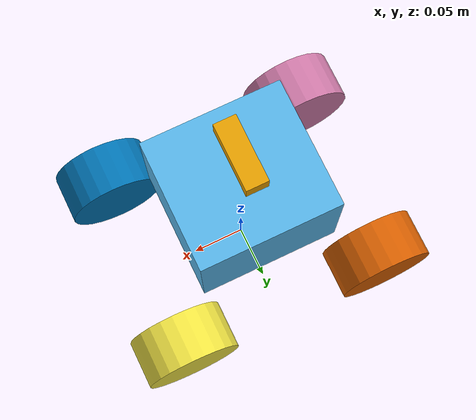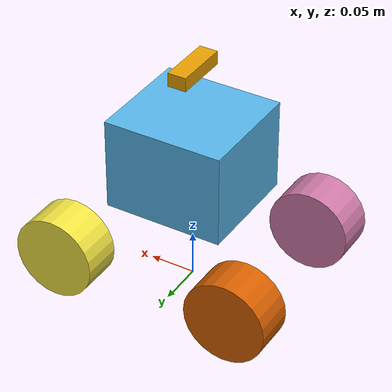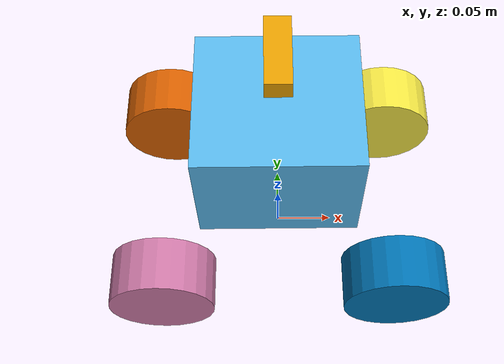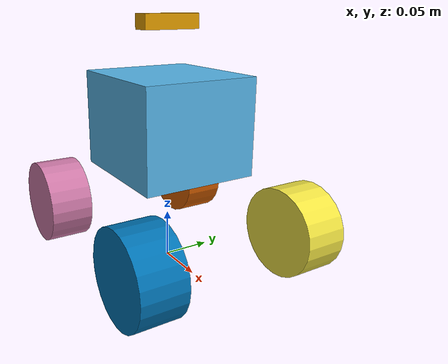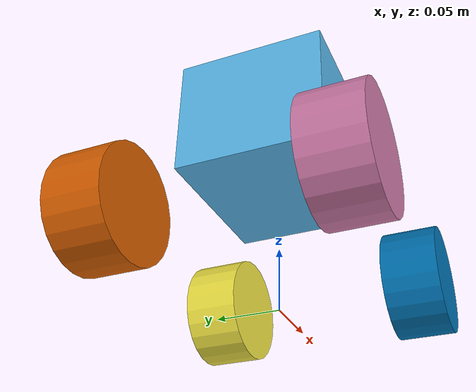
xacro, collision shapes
<?xml version="1.0"?>

<robot name="limo_four_diff" xmlns:xacro="http://ros.org/wiki/xacro">

    <xacro:include filename="$(find limo_description)/urdf/limo_xacro.xacro" />

    <!-- Variables -->
    <xacro:property name="M_PI" value="3.14159"/>

    <!-- Vehicle Geometries -->
    <xacro:property name="base_x_size" value="0.13" />
    <xacro:property name="base_y_size" value="0.12" />
    <xacro:property name="base_z_size" value="0.1" />

    <xacro:property name="wheelbase" value="0.2"/>
    <xacro:property name="track" value="0.13"/>
    <xacro:property name="wheel_vertical_offset" value="-0.10" />
    <xacro:property name="base_mass" value="2.1557"/>

    <xacro:property name="wheel_length" value="0.045" />
    <xacro:property name="wheel_radius" value="0.045" />
  <link name="base_footprint"/>

  <joint name="base_joint" type="fixed">
    <parent link="base_footprint"/>
    <child link="base_link"/>
    <origin xyz="0.0 0.0 0.15" rpy="0 0 0"/>
  </joint>
    <!-- Base link -->
    <link name="base_link">
        <visual>
            <origin xyz="0 0 -0.15" rpy="0 0 1.57" />
            <geometry>
                <mesh filename="file://$(find limo_description)/meshes/limo_base.dae" scale="1 1 1"/>
            </geometry>
        </visual>
        <collision>
            <!--origin xyz="0 0 -0.15" rpy="0 0 1.57" /-->
            <origin xyz="0 0 0" rpy="0 0 0" />
          <geometry>
              <box size="${base_x_size} ${base_y_size} ${base_z_size}"/>
          </geometry>
        </collision>
    </link>

    <link name="inertial_link">
        <inertial>
            <origin xyz="0.0 0.0 0.0" />
            <mass value="${base_mass}" />
            <inertia ixx="0.24" ixy="0" ixz="0"
                     iyy="0.96" iyz="0"
                     izz="0.96" />
        </inertial>
    </link>

    <joint name="inertial_joint" type="fixed">
        <origin xyz="0 0 0" rpy="0 0 0" />
        <parent link="base_link" />
        <child link="inertial_link" />
    </joint>

    <xacro:limo_wheel parent_prefix="base_link" wheel_prefix="front_left" reflect="1">
        <origin xyz="${wheelbase/2} ${track/2} ${wheel_vertical_offset}" rpy="0 0  0" />
    </xacro:limo_wheel>

    <xacro:limo_wheel parent_prefix="base_link" wheel_prefix="front_right" reflect="-1">
        <origin xyz="${wheelbase/2} ${-track/2} ${wheel_vertical_offset}" rpy="${M_PI} 0 0" />
    </xacro:limo_wheel>

    <xacro:limo_wheel parent_prefix="base_link" wheel_prefix="rear_left" reflect="1">
        <origin xyz="${-wheelbase/2} ${track/2} ${wheel_vertical_offset}" rpy="0 0 0" />
    </xacro:limo_wheel>

    <xacro:limo_wheel parent_prefix="base_link" wheel_prefix="rear_right" reflect="-1">
        <origin xyz="${-wheelbase/2} ${-track/2} ${wheel_vertical_offset}" rpy="${M_PI} 0 0" />
    </xacro:limo_wheel>

    <link name='laser_link'>
        <pose>0 0 0 0 0 0</pose>
        <inertial>
            <mass value="0.1"/>
            <origin xyz="0.0 0 0" rpy="0 0 0"/>
            <inertia
                ixx="1e-6" ixy="0" ixz="0"
                iyy="1e-6" iyz="0"
                izz="1e-6"
            />
        </inertial>
        <visual name='laser_visual'>
            <origin xyz="0 0 0" rpy="0 0 0"/>
            <geometry>
                <cylinder radius="0.02" length="0.01"/>
            </geometry>
            <material name='laser_material'>
                <ambient>0.1 0.1 0.1 1</ambient>
                <diffuse>0.1 0.1 0.2 1</diffuse>
                <specular>0 0 0 0</specular>
                <emissive>0 0 0 1</emissive>
            </material>
        </visual>
        <collision name='laser_collision'>
            <origin xyz="0 0 0" rpy="0 0 0"/>
            <geometry>
                <cylinder radius="0.032" length="0.016"/>
            </geometry>
        </collision>
    </link>
    <joint type="fixed" name="laser_joint">
        <origin xyz='0 0 0' rpy='0 -0 0'/>
        <child link="laser_link"/>
        <parent link="base_link"/>
    </joint>
    <gazebo reference="laser_link">
      <turnGravityOff>false</turnGravityOff>
      <sensor type="gpu_ray" name="laser">
        <update_rate>40</update_rate>
        <ray>
          <scan>
            <horizontal>
              <samples>720</samples>
              <resolution>1</resolution>
              <min_angle>-2</min_angle>
              <max_angle>2</max_angle>
            </horizontal>
          </scan>
          <range>
            <min>0.04</min>
            <max>30.0</max>
            <resolution>0.01</resolution>
          </range>
          <noise>
            <type>gaussian</type>
            <mean>0.0</mean>
            <stddev>0.01</stddev>
          </noise>
        </ray>
       <plugin name="gazebo_ros_planar_lidar" filename="libgazebo_ros_gpu_laser.so">
          <topicName>scan</topicName>
          <frameName>laser_link</frameName>
          <robotNamespace>/</robotNamespace>
        </plugin>
      </sensor>
    </gazebo>

     <link name='camera_link'>
            <pose>0 0 0 0 0 0</pose>
            <inertial>
                <mass value="0.1"/>
                <origin xyz="0.0 0 0" rpy="0 0 0"/>
                <inertia
                    ixx="1e-6" ixy="0" ixz="0"
                    iyy="1e-6" iyz="0"
                    izz="1e-6"
                />
            </inertial>
            <visual name='depth_camera_visual'>
                <origin xyz="0 0 0" rpy="0 0 0"/>
                <geometry>
                    <box size="0.02 0.06 0.015"/>
                </geometry>
                <material name='depth_camera_material'>
                    <ambient>0.1 0.1 0.1 1</ambient>
                    <diffuse>0.1 0.1 0.2 1</diffuse>
                    <specular>0 0 0 0</specular>
                    <emissive>0 0 0 1</emissive>
                </material>
            </visual>
            <collision name='depth_camera_collision'>
                <origin xyz="0 0 0" rpy="0 0 0"/>
                <geometry>
                    <box size="0.02 0.06 0.015"/>
                </geometry>
            </collision>
            <sensor name="thermal_camera_8bit" type="thermal">
            <camera>
                <horizontal_fov>1.047</horizontal_fov>
                <image>
                <width>320</width>
                <height>240</height>
                <format>L8</format>
                </image>
                <clip>
                <near>0.1</near>
                <far>100</far>
                </clip>
            </camera>
            <always_on>1</always_on>
            <update_rate>30</update_rate>
            <visualize>true</visualize>
            <topic>thermal_camera_8bit/image</topic>
            <plugin
                filename="ignition-gazebo-thermal-sensor-system"
                name="ignition::gazebo::systems::ThermalSensor">
                <min_temp>253.15</min_temp>
                <max_temp>673.15</max_temp>
                <resolution>3.0</resolution>
            </plugin>
            </sensor>
        </link>

        <joint type="fixed" name="depth_camera_joint">
            <origin xyz='0 0 0.1' rpy='0 -0 0'/>
            <child link="camera_link"/>
            <parent link="base_link"/>
        </joint>
        <link name="depth_link"></link>

        <joint name="camera_to_camera_joint" type="fixed">
            <origin xyz="0 0 0" rpy="${-M_PI/2} 0 ${-M_PI/2} "/>
            <parent link="camera_link"/>
            <child link="depth_link"/>
          </joint>

        <gazebo reference="camera_link">
        <sensor type="depth" name="camera">
            <always_on>true</always_on>
            <update_rate>30</update_rate>
            <camera>
            <horizontal_fov>${60.0*M_PI/180.0}</horizontal_fov>
            <image>
                <format>R8G8B8</format>
                <width>320</width>
                <height>240</height>
            </image>
            <clip>
                <near>0.05</near>
                <far>0.8</far>
            </clip>
            </camera>
            <plugin name="rgbd_camera_controller" filename="libgazebo_ros_depth_camera.so">
            <cameraName>camera</cameraName>
            <alwaysOn>true</alwaysOn>
            <updateRate>30</updateRate>
            <imageTopicName>rgb/image_raw</imageTopicName>
            <depthImageTopicName>depth/image_raw</depthImageTopicName>
            <pointCloudTopicName>depth/points</pointCloudTopicName>
            <cameraInfoTopicName>rgb/camera_info</cameraInfoTopicName>
            <depthImageCameraInfoTopicName>depth/camera_info</depthImageCameraInfoTopicName>
            <frameName>camera_frame_optical</frameName>
            <baseline>0.1</baseline>
            <distortion_k1>0.0</distortion_k1>
            <distortion_k2>0.0</distortion_k2>
            <distortion_k3>0.0</distortion_k3>
            <distortion_t1>0.0</distortion_t1>
            <distortion_t2>0.0</distortion_t2>
            <pointCloudCutoff>0.6</pointCloudCutoff>
            <pointCloudCutoffMax>8</pointCloudCutoffMax>
            <robotNamespace>/</robotNamespace>
            </plugin>
        </sensor>
        </gazebo>
</robot>

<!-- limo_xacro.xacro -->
<robot name="limo_xacro" xmlns:xacro="http://ros.org/wiki/xacro">
    <xacro:macro name="limo_wheel" params="parent_prefix wheel_prefix reflect *joint_pose">
        <link name="${wheel_prefix}_wheel_link">
            <inertial>
                <origin xyz="0 0 0" />
                <mass value="0.5" />
                <inertia ixx="0.01055" ixy="0" ixz="0" iyy="0.00075" iyz="0" izz="0.01055" />
            </inertial>
            <visual>
                <origin xyz="0 0 0" rpy="0 0 0" />
                <geometry>
                    <mesh filename="file://$(find limo_description)/meshes/limo_wheel.dae" />
                </geometry>
            </visual>
            <collision>
              <origin xyz="0 ${wheel_length/2} 0" rpy="1.57 0 0" />
              <geometry>
                  <cylinder length="${wheel_length}" radius="${wheel_radius}" />
              </geometry>
            </collision>
        </link>

        <joint name="${wheel_prefix}_wheel" type="continuous">
            <parent link="${parent_prefix}"/>
            <child link="${wheel_prefix}_wheel_link"/>
            <xacro:insert_block name="joint_pose"/>
            <axis xyz="0 ${reflect*1} 0"/>
        </joint>
    </xacro:macro>

    <xacro:macro name="limo_laser" params="parent_prefix frame_prefix *joint_pose">
        <link name='${frame_prefix}_link'>
            <pose>0 0 0 0 0 0</pose>
            <inertial>
                <mass value="0.1"/>
                <origin xyz="0.0 0 0" rpy="0 0 0"/>
                <inertia
                    ixx="1e-6" ixy="0" ixz="0"
                    iyy="1e-6" iyz="0"
                    izz="1e-6"
                />
            </inertial>
            <visual name='laser_visual'>
                <origin xyz="0 0 0" rpy="0 0 0"/>
                <geometry>
                    <cylinder radius="0.02" length="0.01"/>
                </geometry>
                <material name='laser_material'>
                    <ambient>0.1 0.1 0.1 1</ambient>
                    <diffuse>0.1 0.1 0.2 1</diffuse>
                    <specular>0 0 0 0</specular>
                    <emissive>0 0 0 1</emissive>
                </material>
            </visual>
            <collision name='laser_collision'>
                <origin xyz="0 0 0" rpy="0 0 0"/>
                <geometry>
                    <cylinder radius="0.032" length="0.016"/>
                </geometry>
            </collision>
        </link>
        <joint type="fixed" name="laser_joint">
            <xacro:insert_block name="joint_pose"/>
            <child link="${frame_prefix}_link"/>
            <parent link="${parent_prefix}"/>
        </joint>
        <gazebo reference="${frame_prefix}_link">
            <material>Gazebo/Yellow</material>
        </gazebo>
    </xacro:macro>

    <xacro:macro name="limo_depth_camera" params="parent_prefix frame_prefix *joint_pose">
        <link name='${frame_prefix}_link'>
            <pose>0 0 0 0 0 0</pose>
            <inertial>
                <mass value="0.1"/>
                <origin xyz="0.0 0 0" rpy="0 0 0"/>
                <inertia
                    ixx="1e-6" ixy="0" ixz="0"
                    iyy="1e-6" iyz="0"
                    izz="1e-6"
                />
            </inertial>
            <visual name='depth_camera_visual'>
                <origin xyz="0 0 0" rpy="0 0 0"/>
                <geometry>
                    <box size="0.02 0.06 0.015"/>
                </geometry>
                <material name='depth_camera_material'>
                    <ambient>0.1 0.1 0.1 1</ambient>
                    <diffuse>0.1 0.1 0.2 1</diffuse>
                    <specular>0 0 0 0</specular>
                    <emissive>0 0 0 1</emissive>
                </material>
            </visual>
            <collision name='depth_camera_collision'>
                <origin xyz="0 0 0" rpy="0 0 0"/>
                <geometry>
                    <box size="0.02 0.06 0.015"/>
                </geometry>
            </collision>
            <sensor name="thermal_camera_8bit" type="thermal">
            <camera>
                <horizontal_fov>1.047</horizontal_fov>
                <image>
                <width>320</width>
                <height>240</height>
                <format>L8</format>
                </image>
                <clip>
                <near>0.1</near>
                <far>100</far>
                </clip>
            </camera>
            <always_on>1</always_on>
            <update_rate>30</update_rate>
            <visualize>true</visualize>
            <topic>thermal_camera_8bit/image</topic>
            <plugin
                filename="ignition-gazebo-thermal-sensor-system"
                name="ignition::gazebo::systems::ThermalSensor">
                <min_temp>253.15</min_temp>
                <max_temp>673.15</max_temp>
                <resolution>3.0</resolution>
            </plugin>
            </sensor>
        </link>

        <joint type="fixed" name="depth_camera_joint">
            <xacro:insert_block name="joint_pose"/>
            <child link="${frame_prefix}_link"/>
            <parent link="${parent_prefix}"/>
        </joint>
        <link name="depth_link"></link>

        <joint name="${frame_prefix}_to_camera_joint" type="fixed">
            <origin xyz="0 0 0" rpy="${-M_PI/2} 0 ${-M_PI/2} "/>
            <parent link="${frame_prefix}_link"/>
            <child link="depth_link"/>
          </joint>

        <gazebo reference="${frame_prefix}_link">
            <material>Gazebo/Yellow</material>
        </gazebo>
    </xacro:macro>

    <xacro:macro name="limo_imu" params="parent_prefix frame_prefix  *joint_pose">
        <link name='${frame_prefix}_link'>
            <pose>0 0 0 0 0 0</pose>
            <inertial>
                <mass value="0.01"/>
                <origin xyz="0.0 0 0" rpy="0 0 0"/>
                <inertia
                    ixx="1e-7" ixy="0" ixz="0"
                    iyy="1e-7" iyz="0"
                    izz="1e-7"
                />
            </inertial>
            <visual name='imu_visual'>
                <origin xyz="0 0 0" rpy="0 0 0"/>
                <geometry>
                    <box size="0.001 0.001 0.001"/>
                </geometry>
                <material name='imu_material'>
                    <ambient>0.1 0.1 0.1 1</ambient>
                    <diffuse>0.1 0.1 0.2 1</diffuse>
                    <specular>0 0 0 0</specular>
                    <emissive>0 0 0 1</emissive>
                </material>
            </visual>
            <collision name='imu_collision'>
                <origin xyz="0 0 0" rpy="0 0 0"/>
                <geometry>
                    <box size="0.001 0.001 0.001"/>
                </geometry>
            </collision>
        </link>
        <joint type="fixed" name="imu_joint">
            <xacro:insert_block name="joint_pose"/>
            <child link="${frame_prefix}_link"/>
            <parent link="${parent_prefix}"/>
        </joint>
        <gazebo reference="${frame_prefix}_link">
            <material>Gazebo/Yellow</material>
        </gazebo>
    </xacro:macro>
</robot>
